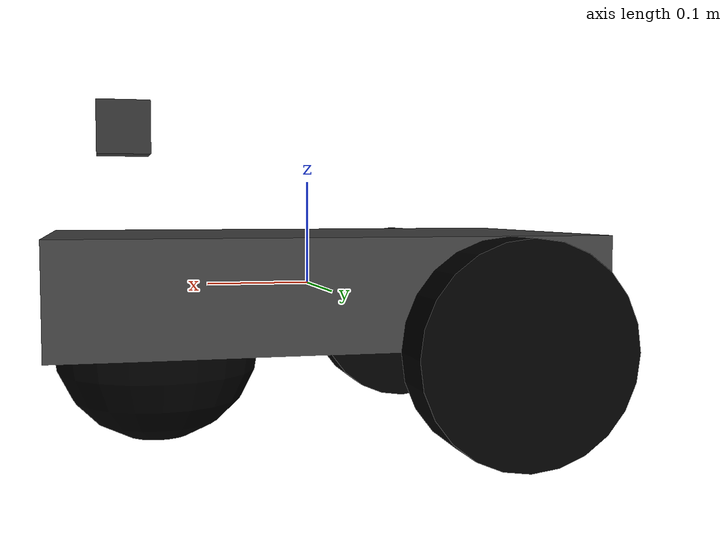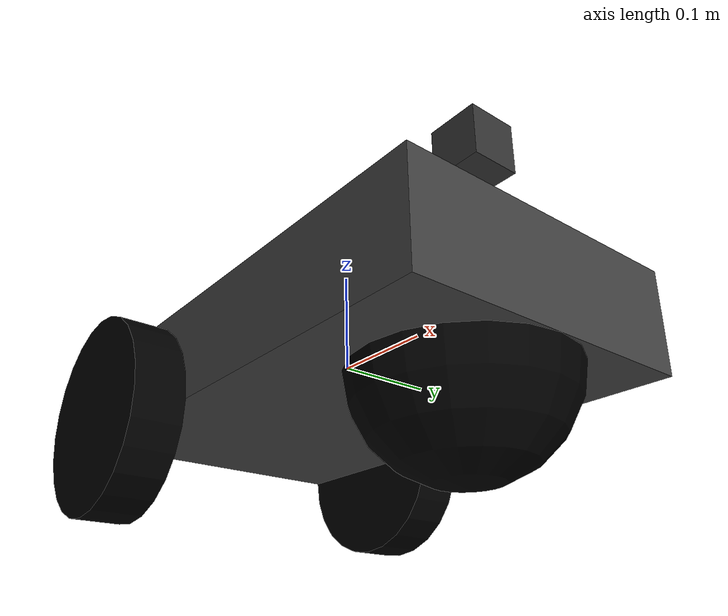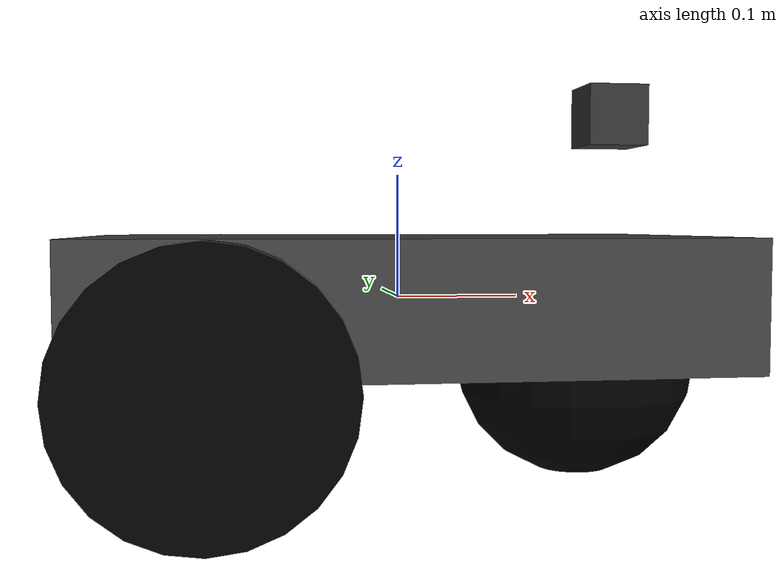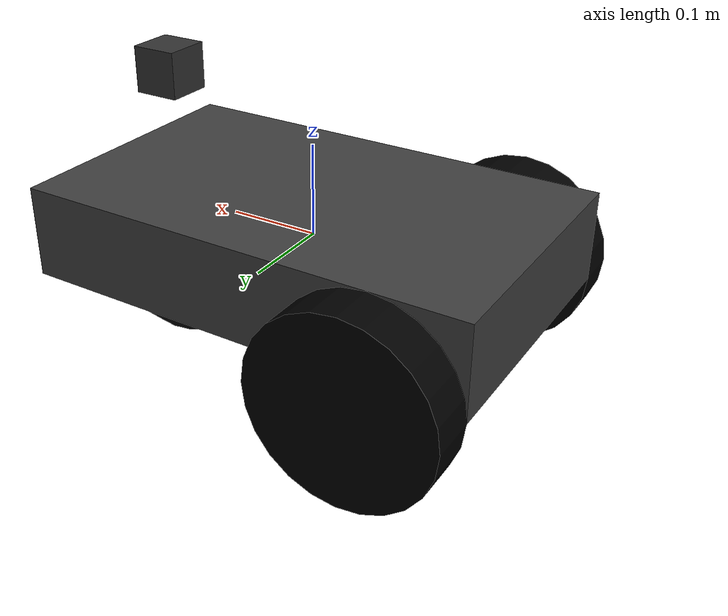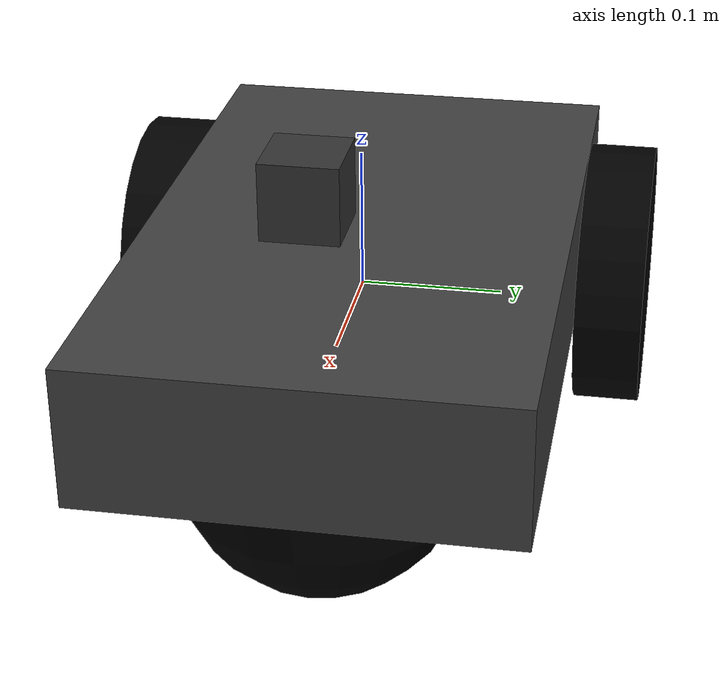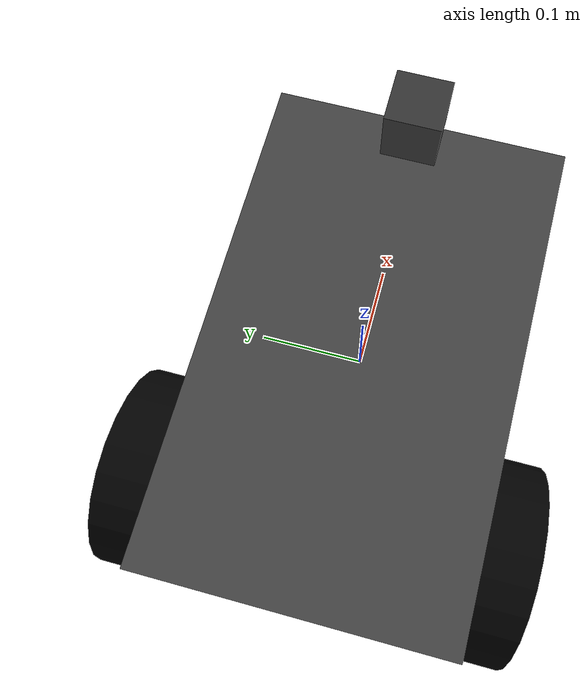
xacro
<?xml version="1.0"?>

<robot name="differential_drive_robot" xmlns:xacro="http://www.ros.org/wiki/xacro">

    <!-- Robot Parameters -->
    <xacro:include filename="$(find diff_gz_nav2)/urdf/imu.xacro"/>
    <xacro:property name="PI" value="3.14159265"/>
    <xacro:property name="body_length" value="0.5"/>
    <xacro:property name="body_width" value="0.3"/>
    <xacro:property name="body_height" value="0.1"/>
    <xacro:property name="body_density" value="7850.0"/> <!-- Steel -->
    <xacro:property name="body_mass" value="${body_density * body_length * body_height * body_width}"/>
    <xacro:property name="body_inertia_x" value="${1.0/12.0 * body_mass * (body_height*body_height + body_width*body_width)}"/>
    <xacro:property name="body_inertia_y" value="${1.0/12.0 * body_mass * (body_length*body_length + body_height*body_height)}"/>
    <xacro:property name="body_inertia_z" value="${1.0/12.0 * body_mass * (body_length*body_length + body_width*body_width)}"/>

    <xacro:property name="wheel_radius" value="0.1"/>
    <xacro:property name="wheel_width" value="0.05"/>
    <xacro:property name="wheel_separation" value="${body_width + wheel_width}"/>
    <xacro:property name="wheel_offset" value="${body_length/2 - wheel_radius}"/>
    <xacro:property name="wheel_density" value="900"/> <!-- Ruber -->
    <xacro:property name="wheel_mass" value="${wheel_density * PI * wheel_radius * wheel_radius * wheel_width}"/>
    <xacro:property name="wheel_inertia_x" value="${1.0/12.0 * wheel_mass * (3*wheel_radius*wheel_radius + wheel_width*wheel_width)}"/>
    <xacro:property name="wheel_inertia_y" value="${1.0/12.0 * wheel_mass * (3*wheel_radius*wheel_radius + wheel_width*wheel_width)}"/>
    <xacro:property name="wheel_inertia_z" value="${1.0/2.0 * wheel_mass * wheel_radius * wheel_radius}"/>

    <xacro:property name="caster_radius" value="0.1"/>
    <xacro:property name="caster_offset" value="${body_length/2 - caster_radius}"/>
    <xacro:property name="caster_density" value="0.1"/>
    <xacro:property name="caster_mass" value="${caster_density * 4.0/3.0 * PI * caster_radius * caster_radius * caster_radius}"/>
    <xacro:property name="caster_inertia_x" value="${2.0/5.0 * caster_mass * caster_radius * caster_radius}"/>
    <xacro:property name="caster_inertia_y" value="${2.0/5.0 * caster_mass * caster_radius * caster_radius}"/>
    <xacro:property name="caster_inertia_z" value="${2.0/5.0 * caster_mass * caster_radius * caster_radius}"/>

    <!-- Control Parameters -->
    <xacro:property name="max_linear_acceleration" value="10"/>

    <!-- Links -->

    <!-- base_link -->
    <link name="base_link">
        <visual>
            <origin xyz="0.0 0.0 0.0" rpy="0.0 0.0 0.0"/>
            <geometry>
                <box size="${body_length} ${body_width} ${body_height}"/>
            </geometry>
            <material name="body_material">
                <color rgba="0.25 0.25 0.25 1.0"/>
            </material>
        </visual>
        <collision>
            <origin xyz="0.0 0.0 0.0" rpy="0.0 0.0 0.0"/>
            <geometry>
                <box size="${body_length} ${body_width} ${body_height}"/>
            </geometry>
        </collision>
        <inertial>
            <mass value="10"/>
            <inertia ixx="${body_inertia_x}" ixy="0.0" ixz="0.0" iyy="${body_inertia_y}" iyz="0" izz="${body_inertia_z}"/>
            <origin xyz="0 0 0" rpy="0 0 0"/>
        </inertial>
    </link>

    <!-- Left Wheel -->
    <link name="left_wheel_link">
        <visual>
            <origin xyz="0.0 0.0 0.0" rpy="1.570795 0.0 0.0"/>
            <geometry>
                <cylinder radius="${wheel_radius}" length="${wheel_width}"/>
            </geometry>
            <material name="wheel_material">
                <color rgba="0.0 0.0 0.0 1.0"/>
            </material>
        </visual>
        <collision>
            <origin xyz="0.0 0.0 0.0" rpy="1.570795 0.0 0.0"/>
            <geometry>
                <cylinder radius="${wheel_radius}" length="${wheel_width}"/>
            </geometry>
        </collision>
        <inertial>
            <mass value="2"/>
            <inertia ixx="${wheel_inertia_x}" ixy="0.0" ixz="0.0" iyy="${wheel_inertia_y}" iyz="0" izz="${wheel_inertia_z}"/>
            <origin xyz="0.0 0.0 0.0" rpy="1.570795 0.0 0.0"/>
        </inertial>
    </link>

    <!-- Right Wheel -->
    <link name="right_wheel_link">
        <visual>
            <origin xyz="0.0 0.0 0.0" rpy="1.570795 0.0 0.0"/>
            <geometry>
                <cylinder radius="${wheel_radius}" length="${wheel_width}"/>
            </geometry>
            <material name="wheel_material">
                <color rgba="0.0 0.0 0.0 1.0"/>
            </material>
        </visual>
        <collision>
            <origin xyz="0.0 0.0 0.0" rpy="1.570795 0.0 0.0"/>
            <geometry>
                <cylinder radius="${wheel_radius}" length="${wheel_width}"/>
            </geometry>
        </collision>
        <inertial>
            <mass value="2"/>
            <inertia ixx="${wheel_inertia_x}" ixy="0.0" ixz="0.0" iyy="${wheel_inertia_y}" iyz="0" izz="${wheel_inertia_z}"/>
            <origin xyz="0.0 0.0 0.0" rpy="1.570795 0.0 0.0"/>
        </inertial>
    </link>

    <!-- Caster Wheel -->
    <link name="caster_link">
        <visual>
            <origin xyz="0.0 0.0 0.0" rpy="0.0 0.0 0.0"/>
            <geometry>
                <sphere radius="${caster_radius}"/>
            </geometry>
            <material name="caster_material">
                <color rgba="0.0 0.0 0.0 1.0"/>
            </material>
        </visual>
        <collision>
            <origin xyz="0.0 0.0 0.0" rpy="0.0 0.0 0.0"/>
            <geometry>
                <sphere radius="${caster_radius}"/>
            </geometry>
        </collision>
        <inertial>
            <mass value="0.5"/>
            <inertia ixx="${caster_inertia_x}" ixy="0.0" ixz="0.0" iyy="${caster_inertia_y}" iyz="0" izz="${caster_inertia_z}"/>
            <origin xyz="0 0 0" rpy="0 0 0"/>
        </inertial>
    </link>

    <!-- 激光雷达固定链接（视觉/碰撞保持不变） -->
    <link name="lidar_link">
        <visual>
            <geometry>
            <box size="0.05 0.05 0.05"/>
            </geometry>
            <material name="lidar_material">
            <color rgba="0.2 0.2 0.2 1.0"/>
            </material>
        </visual>
        <collision>
            <geometry>
            <box size="0.05 0.05 0.05"/>
            </geometry>
        </collision>
        <inertial>
            <mass value="0.1"/>
            <inertia ixx="1e-4" ixy="0" ixz="0" iyy="1e-4" iyz="0" izz="1e-4"/>
        </inertial>
    </link>

    <joint name="lidar_joint" type="fixed">
        <parent link="base_link"/>
        <child link="lidar_link"/>
        <origin xyz="0.18 0 0.15" rpy="0 0 0"/>
    </joint>

    <!-- Joints -->

    <!-- Left Wheel Joint -->
    <joint name="left_wheel_joint" type="continuous">
        <origin xyz="-${wheel_offset} ${wheel_separation/2} -${wheel_radius/2}" rpy="0 0 0"/>
        <parent link="base_link"/>
        <child link="left_wheel_link"/>
        <axis xyz="0 1 0"/>
        <limit effort="100" velocity="10.0"/>
        <dynamics damping="0.1" friction="0.1"/>
    </joint>

    <!-- Right Wheel Joint -->
    <joint name="right_wheel_joint" type="continuous">
        <origin xyz="-${wheel_offset} ${-wheel_separation/2} -${wheel_radius/2}" rpy="0 0 0"/>
        <parent link="base_link"/>
        <child link="right_wheel_link"/>
        <axis xyz="0 1 0"/>
        <limit effort="100" velocity="10.0"/>
        <dynamics damping="0.1" friction="0.1"/>
    </joint>

    <!-- Caster Wheel Joint (fixed) -->
    <joint name="caster_joint" type="fixed">
        <origin xyz="${caster_offset} 0 -${caster_radius/2}" rpy="0 0 0"/>
        <parent link="base_link"/>
        <child link="caster_link"/>
    </joint>

    <gazebo reference="body_link">
        <mu1>1.0</mu1>
        <mu2>1.0</mu2>
    </gazebo>

    <gazebo reference="right_wheel_link">
        <mu1>1.0</mu1>
        <mu2>1.0</mu2>
    </gazebo>

    <gazebo reference="left_wheel_link">
        <mu1>1.0</mu1>
        <mu2>1.0</mu2>
    </gazebo>

    <gazebo reference="caster_link">
        <mu1>0.000001</mu1>
        <mu2>0.000001</mu2>
    </gazebo>

    <!-- 添加 ros2_control 标签，定义仿真下的硬件交互 -->
    <ros2_control name="GazeboSimSystem" type="system">
        <hardware>
            <plugin>gz_ros2_control/GazeboSimSystem</plugin>
        </hardware>
        <!-- 定义关节：左轮 -->
        <joint name="left_wheel_joint">
            <command_interface name="velocity">
                <param name="min">-10</param>
                <param name="max">10</param>
            </command_interface>
            <state_interface name="position"/>
            <state_interface name="velocity"/>
        </joint>
        <!-- 定义关节：右轮 -->
        <joint name="right_wheel_joint">
            <command_interface name="velocity">
                <param name="min">-10</param>
                <param name="max">10</param>
            </command_interface>
            <state_interface name="position"/>
            <state_interface name="velocity"/>
        </joint>
    </ros2_control>

    <!-- 添加 gazebo 标签，加载仿真插件 -->
    <gazebo>
        <plugin filename="/opt/ros/jazzy/lib/libgz_ros2_control-system.so" name="gz_ros2_control::GazeboSimROS2ControlPlugin">
            <!-- 参数文件路径 -->
            <parameters>$(find diff_gz_nav2)/config/my_controllers.yaml</parameters>
            <param name="use_sim_time">true</param>
        </plugin>

        <plugin filename="gz-sim-sensors-system" name="gz::sim::systems::Sensors">
            <render_engine>ogre2</render_engine>
        </plugin>
    </gazebo>

    <!-- Gazebo Sim 使用的 SDF 传感器描述 -->
    <gazebo reference="lidar_link">
        <sensor name="lidar_sensor" type="gpu_lidar">
            <pose>0 0 0 0 0 0</pose>
            <topic>lidar_scan</topic>
            <update_rate>10</update_rate>
            <gz_frame_id>lidar_link</gz_frame_id>
            <lidar>
                <scan>
                    <horizontal>
                    <samples>360</samples>
                    <resolution>1</resolution>
                    <min_angle>0.0</min_angle>
                    <max_angle>6.283185307179586</max_angle>
                    </horizontal>
                </scan>
                <range>
                    <min>0.2</min>
                    <max>8.0</max>
                    <resolution>0.01</resolution>
                </range>
                <noise>
                    <type>gaussian</type>
                    <mean>0.0</mean>
                    <stddev>0.001</stddev>
                </noise>
            </lidar>
            <always_on>1</always_on>
            <visualize>false</visualize>
        </sensor>
    </gazebo>
</robot>
